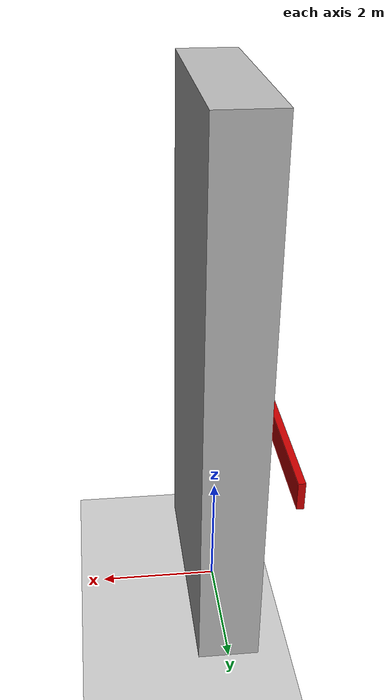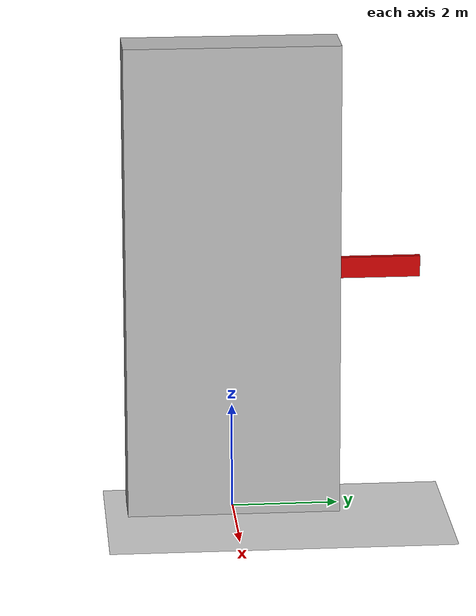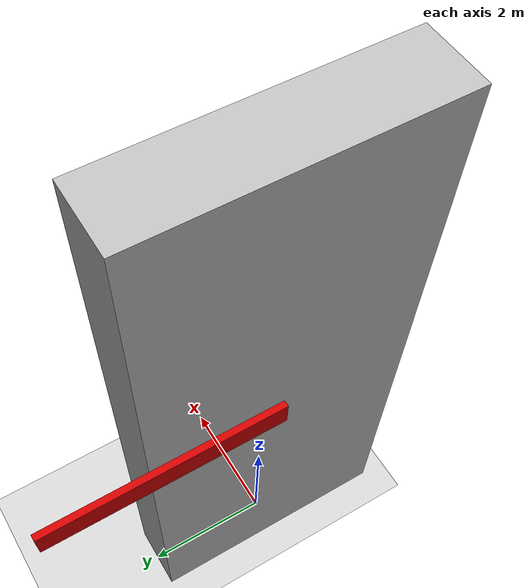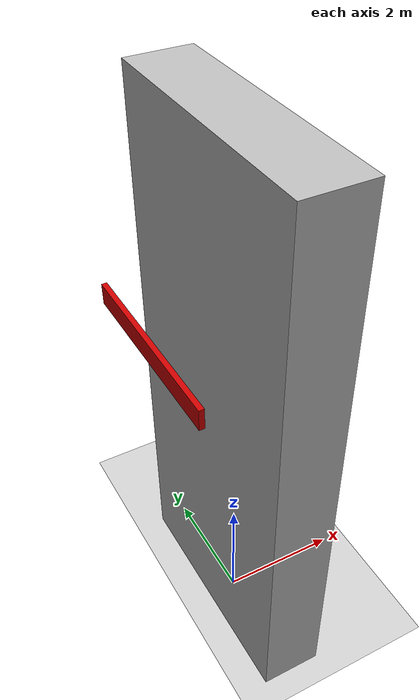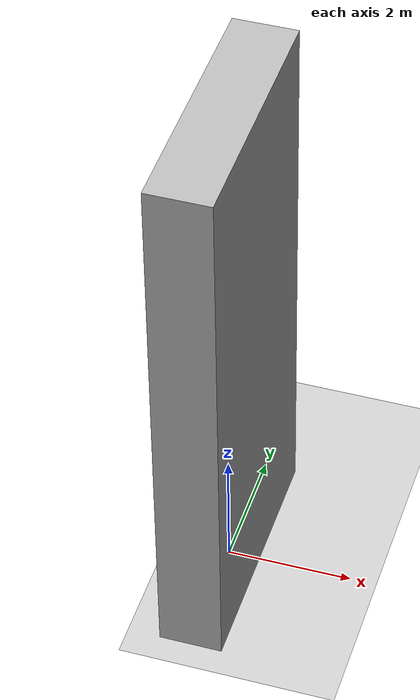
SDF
<?xml version="1.0" ?>
<sdf version="1.9">
  <world name="servo">
    <physics name="1ms" type="ignore">
      <max_step_size>0.001</max_step_size>
      <real_time_factor>1.0</real_time_factor>
    </physics>

    <plugin name="gz::sim::systems::Physics"
      filename="gz-sim-physics-system">
    </plugin>
    <plugin name="gz::sim::systems::Sensors"
      filename="gz-sim-sensors-system">
      <render_engine>ogre2</render_engine>
    </plugin>
    <plugin name="gz::sim::systems::UserCommands"
      filename="gz-sim-user-commands-system">
    </plugin>
    <plugin name="gz::sim::systems::SceneBroadcaster"
      filename="gz-sim-scene-broadcaster-system">
    </plugin>
    <plugin name="gz::sim::systems::Imu"
      filename="gz-sim-imu-system">
    </plugin>

    <scene>
      <ambient>1.0 1.0 1.0</ambient>
      <background>0.8 0.8 0.8</background>
      <sky></sky>
    </scene>

    <light type="directional" name="sun">
      <cast_shadows>true</cast_shadows>
      <pose>0 0 10 0 0 0</pose>
      <diffuse>0.8 0.8 0.8 1</diffuse>
      <specular>0.8 0.8 0.8 1</specular>
      <attenuation>
        <range>1000</range>
        <constant>0.9</constant>
        <linear>0.01</linear>
        <quadratic>0.001</quadratic>
      </attenuation>
      <direction>0.5 0.1 -0.9</direction>
    </light>

    <model name="ground_plane">
      <static>true</static>
      <link name="link">
        <collision name="collision">
          <geometry>
            <plane>
              <normal>0 0 1</normal>
              <size>100 100</size>
            </plane>
          </geometry>
        </collision>
        <visual name="visual">
          <geometry>
            <plane>
              <normal>0 0 1</normal>
              <size>100 100</size>
            </plane>
          </geometry>
          <material>
            <ambient>0.8 0.8 0.8 1</ambient>
            <diffuse>0.8 0.8 0.8 1</diffuse>
            <specular>0.8 0.8 0.8 1</specular>
          </material>
        </visual>
      </link>
    </model>

    <!-- servo -->
    <model name="servo">
      <pose degrees="true">0 0 4.5 0 0 0</pose>
      <link name="base_link">
        <inertial>
          <mass>100.0</mass>
          <inertia>
            <ixx>808.3333333</ixx>
            <ixy>0</ixy>
            <ixz>0</ixz>
            <iyy>683.3333333</iyy>
            <iyz>0</iyz>
            <izz>141.6666667</izz>
          </inertia>
        </inertial>
        <visual name="visual">
          <geometry>
            <box>
              <size>1 4 9</size>
            </box>
          </geometry>
        </visual>
        <collision name="collision">
          <geometry>
            <box>
              <size>1 4 9</size>
            </box>
          </geometry>
        </collision>
      </link>
      <joint name="world_fixed" type="fixed">
        <parent>world</parent>
        <child>base_link</child>
      </joint>

      <link name="servo_arm_link">
        <pose relative_to="servo_arm_joint" degrees="true">0 0 1.8 0 0 0</pose>
        <inertial>
          <mass>1</mass>
          <inertia>
            <ixx>1.093333333</ixx>
            <ixy>0</ixy>
            <ixz>0</ixz>
            <iyy>1.080833333</iyy>
            <iyz>0</iyz>
            <izz>0.014166667</izz>
          </inertia>
        </inertial>
        <visual name="visual">
          <geometry>
            <box>
              <size>0.1 0.4 3.6</size>
            </box>
          </geometry>
          <material>
            <ambient>0.2 0.8 0.2 1</ambient>
            <diffuse>0.8 0 0 1</diffuse>
          </material>
        </visual>
        <collision name="collision">
          <geometry>
            <box>
              <size>0.1 0.4 3.6</size>
            </box>
          </geometry>
        </collision>
      </link>
      <joint name="servo_arm_joint" type="revolute">
        <pose relative_to="base_link" degrees="true">-0.55 0 0 90 0 180</pose>
        <parent>base_link</parent>
        <child>servo_arm_link</child>
        <axis>
          <xyz>1 0 0</xyz>
          <limits>
            <lower>-1.570796</lower>
            <upper>1.570796</upper>
          </limits>
          <dynamics>
            <damping>0.001</damping>
          </dynamics>
        </axis>
      </joint>

      <!-- plugins -->
      <plugin name="gz::sim::systems::JointStatePublisher"
        filename="gz-sim-joint-state-publisher-system">
      </plugin>

      <plugin name="gz::sim::systems::JointPositionController"
        filename="gz-sim-joint-position-controller-system">
        <joint_name>servo_arm_joint</joint_name>
        <topic>/model/servo/joint/servo_arm_joint/0/cmd_pos</topic>
        <initial_position>0</initial_position>
        <use_velocity_commands>0</use_velocity_commands>
        <p_gain>10</p_gain>
        <i_gain>0</i_gain>
        <d_gain>0</d_gain>
        <i_max>1</i_max>
        <i_min>-1</i_min>
        <cmd_max>1000</cmd_max>
        <cmd_min>-1000</cmd_min>
      </plugin>

    </model>

  </world>
</sdf>
